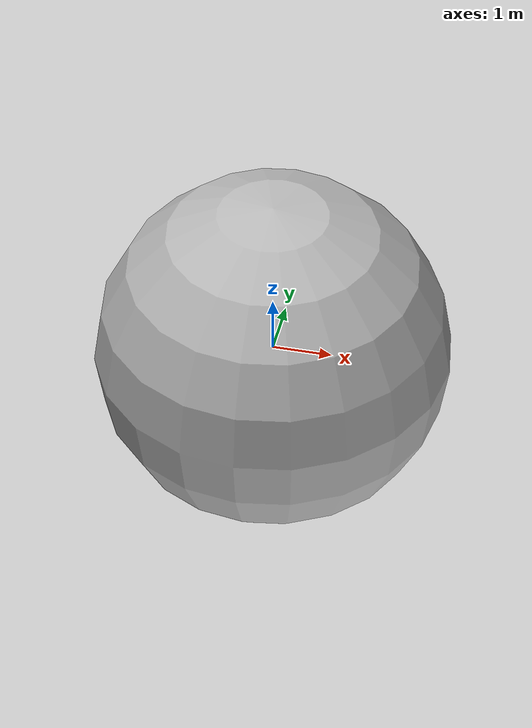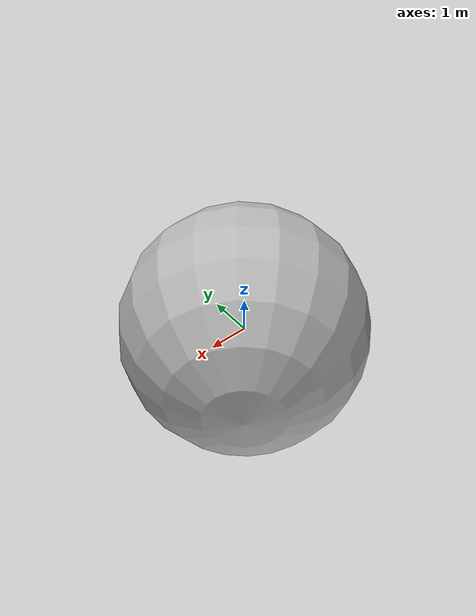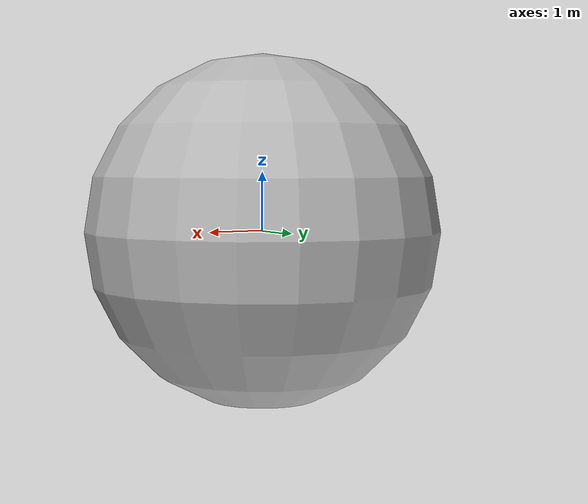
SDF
<?xml version='1.0'?>
<sdf version='1.6'>
		<model name="BodyIndex">
			<self_collide>true</self_collide>
			<pose>0.0 0.0 0.0 0.0 0.0 0.0</pose>
			<!-- Start of parts of the pmodel BodyIndex -->
			<!-- End of parts of the pmodel BodyIndex -->

			<!-- Start of links of the pmodel BodyIndex -->
			<!-- link full name is BodyIndex::Tip -->
			<link name="1-Tip">
					<pose>0.0 0.0 0.0 0.0 0.0 0.0</pose>
					<inertial>
						<pose>0.0 0.0 0.0 0.0 0.0 0.0</pose>
						<inertia>
							<ixx>1.0</ixx>
							<ixy>0.0</ixy>
							<ixz>0.0</ixz>
							<iyy>1.0</iyy>
							<iyz>0.0</iyz>
							<izz>1.0</izz>
						</inertia>
						<mass>1.0</mass>
					</inertial>
					<!-- body full name is BodyIndex::Tip::my_body::1 -->
					<collision name="1--my_body">
						<laser_retro>0.0</laser_retro>
						<pose>0.0 0.0 0.0 0.0 0.0 0.0</pose>
						<geometry>
							<sphere>
								<radius>1</radius>
							</sphere>
						</geometry>
						<surface>
							<bounce>
								<restitution_coefficient>0.20000000298023224</restitution_coefficient>
								<threshold>99000</threshold>
							</bounce>
							<friction>
								<ode>
									<mu>1.0</mu>
									<mu2>1.0</mu2>
									<fdir1>0.0 0.0 0.0</fdir1>
									<slip1>0.0</slip1>
									<slip2>0.0</slip2>
								</ode>
								<torsional>
									<coefficient>1.0</coefficient>
									<surface_radius>0.0</surface_radius>
								</torsional>
							</friction>
						</surface>
					</collision>
					<visual name="1--my_body">
						<laser_retro>0.0</laser_retro>
						<pose>0.0 0.0 0.0 0.0 0.0 0.0</pose>
						<geometry>
							<sphere>
								<radius>1</radius>
							</sphere>
						</geometry>
						<surface>
							<bounce>
								<restitution_coefficient>0.20000000298023224</restitution_coefficient>
								<threshold>99000</threshold>
							</bounce>
							<friction>
								<ode>
									<mu>1.0</mu>
									<mu2>1.0</mu2>
									<fdir1>0.0 0.0 0.0</fdir1>
									<slip1>0.0</slip1>
									<slip2>0.0</slip2>
								</ode>
								<torsional>
									<coefficient>1.0</coefficient>
									<surface_radius>0.0</surface_radius>
								</torsional>
							</friction>
						</surface>
					</visual>
					<!-- body full name is BodyIndex::Tip::my_body::2 -->
					<collision name="2--my_body">
						<laser_retro>0.0</laser_retro>
						<pose>0.0 0.0 0.0 0.0 0.0 0.0</pose>
						<geometry>
							<sphere>
								<radius>2</radius>
							</sphere>
						</geometry>
						<surface>
							<bounce>
								<restitution_coefficient>0.20000000298023224</restitution_coefficient>
								<threshold>99000</threshold>
							</bounce>
							<friction>
								<ode>
									<mu>1.0</mu>
									<mu2>1.0</mu2>
									<fdir1>0.0 0.0 0.0</fdir1>
									<slip1>0.0</slip1>
									<slip2>0.0</slip2>
								</ode>
								<torsional>
									<coefficient>1.0</coefficient>
									<surface_radius>0.0</surface_radius>
								</torsional>
							</friction>
						</surface>
					</collision>
					<visual name="2--my_body">
						<laser_retro>0.0</laser_retro>
						<pose>0.0 0.0 0.0 0.0 0.0 0.0</pose>
						<geometry>
							<sphere>
								<radius>2</radius>
							</sphere>
						</geometry>
						<surface>
							<bounce>
								<restitution_coefficient>0.20000000298023224</restitution_coefficient>
								<threshold>99000</threshold>
							</bounce>
							<friction>
								<ode>
									<mu>1.0</mu>
									<mu2>1.0</mu2>
									<fdir1>0.0 0.0 0.0</fdir1>
									<slip1>0.0</slip1>
									<slip2>0.0</slip2>
								</ode>
								<torsional>
									<coefficient>1.0</coefficient>
									<surface_radius>0.0</surface_radius>
								</torsional>
							</friction>
						</surface>
					</visual>
					<!-- body full name is BodyIndex::Tip::my_body::3 -->
					<collision name="3--my_body">
						<laser_retro>0.0</laser_retro>
						<pose>0.0 0.0 0.0 0.0 0.0 0.0</pose>
						<geometry>
							<sphere>
								<radius>3</radius>
							</sphere>
						</geometry>
						<surface>
							<bounce>
								<restitution_coefficient>0.20000000298023224</restitution_coefficient>
								<threshold>99000</threshold>
							</bounce>
							<friction>
								<ode>
									<mu>1.0</mu>
									<mu2>1.0</mu2>
									<fdir1>0.0 0.0 0.0</fdir1>
									<slip1>0.0</slip1>
									<slip2>0.0</slip2>
								</ode>
								<torsional>
									<coefficient>1.0</coefficient>
									<surface_radius>0.0</surface_radius>
								</torsional>
							</friction>
						</surface>
					</collision>
					<visual name="3--my_body">
						<laser_retro>0.0</laser_retro>
						<pose>0.0 0.0 0.0 0.0 0.0 0.0</pose>
						<geometry>
							<sphere>
								<radius>3</radius>
							</sphere>
						</geometry>
						<surface>
							<bounce>
								<restitution_coefficient>0.20000000298023224</restitution_coefficient>
								<threshold>99000</threshold>
							</bounce>
							<friction>
								<ode>
									<mu>1.0</mu>
									<mu2>1.0</mu2>
									<fdir1>0.0 0.0 0.0</fdir1>
									<slip1>0.0</slip1>
									<slip2>0.0</slip2>
								</ode>
								<torsional>
									<coefficient>1.0</coefficient>
									<surface_radius>0.0</surface_radius>
								</torsional>
							</friction>
						</surface>
					</visual>
			</link>
			<!-- End of links of the pmodel BodyIndex -->

			<!-- Start of joints of the pmodel BodyIndex -->
			<!-- End of joints of the pmodel BodyIndex -->

			<!-- Start of fixed connections of the pmodel BodyIndex -->
			<!-- End of fixed connections of the pmodel BodyIndex -->
		</model>
</sdf>
